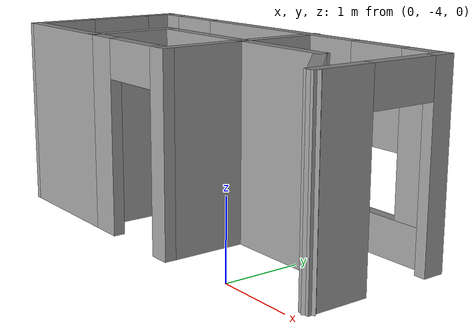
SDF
<?xml version='1.0'?>
<sdf version='1.6'>
  <model name='test_room'>
    <pose frame=''>-1.54985 -3.00256 0 0 -0 0</pose>
    <link name='Wall_0'>
      <pose frame=''>-0.015152 1.07256 0 0 -0 0</pose>
      <visual name='Wall_0_Visual_0'>
        <pose frame=''>-2.5225 0 1.25 0 -0 0</pose>
        <geometry>
          <box>
            <size>0.455 0.15 2.5</size>
          </box>
        </geometry>
        <material>
          <script>
            <uri>file://media/materials/scripts/gazebo.material</uri>
            <name>Gazebo/Grey</name>
          </script>
          <ambient>1 1 1 1</ambient>
        </material>
      </visual>
      <collision name='Wall_0_Collision_0'>
        <geometry>
          <box>
            <size>0.455 0.15 2.5</size>
          </box>
        </geometry>
        <pose frame=''>-2.5225 0 1.25 0 -0 0</pose>
      </collision>
      <visual name='Wall_0_Visual_1'>
        <pose frame=''>0.2275 0 0.25 0 -0 0</pose>
        <geometry>
          <box>
            <size>5.045 0.15 0.5</size>
          </box>
        </geometry>
        <material>
          <script>
            <uri>file://media/materials/scripts/gazebo.material</uri>
            <name>Gazebo/Grey</name>
          </script>
          <ambient>1 1 1 1</ambient>
        </material>
      </visual>
      <collision name='Wall_0_Collision_1'>
        <geometry>
          <box>
            <size>5.045 0.15 0.5</size>
          </box>
        </geometry>
        <pose frame=''>0.2275 0 0.25 0 -0 0</pose>
      </collision>
      <visual name='Wall_0_Visual_2'>
        <pose frame=''>-0.078 0 1.5 0 -0 0</pose>
        <geometry>
          <box>
            <size>2.834 0.15 2</size>
          </box>
        </geometry>
        <material>
          <script>
            <uri>file://media/materials/scripts/gazebo.material</uri>
            <name>Gazebo/Grey</name>
          </script>
          <ambient>1 1 1 1</ambient>
        </material>
      </visual>
      <collision name='Wall_0_Collision_2'>
        <geometry>
          <box>
            <size>2.834 0.15 2</size>
          </box>
        </geometry>
        <pose frame=''>-0.078 0 1.5 0 -0 0</pose>
      </collision>
      <visual name='Wall_0_Visual_3'>
        <pose frame=''>2.4445 0 1.5 0 -0 0</pose>
        <geometry>
          <box>
            <size>0.611 0.15 2</size>
          </box>
        </geometry>
        <material>
          <script>
            <uri>file://media/materials/scripts/gazebo.material</uri>
            <name>Gazebo/Grey</name>
          </script>
          <ambient>1 1 1 1</ambient>
        </material>
      </visual>
      <collision name='Wall_0_Collision_3'>
        <geometry>
          <box>
            <size>0.611 0.15 2</size>
          </box>
        </geometry>
        <pose frame=''>2.4445 0 1.5 0 -0 0</pose>
      </collision>
      <visual name='Wall_0_Visual_4'>
        <pose frame=''>-1.895 0 1.9 0 -0 0</pose>
        <geometry>
          <box>
            <size>0.8 0.15 1.2</size>
          </box>
        </geometry>
        <material>
          <script>
            <uri>file://media/materials/scripts/gazebo.material</uri>
            <name>Gazebo/Grey</name>
          </script>
          <ambient>1 1 1 1</ambient>
        </material>
      </visual>
      <collision name='Wall_0_Collision_4'>
        <geometry>
          <box>
            <size>0.8 0.15 1.2</size>
          </box>
        </geometry>
        <pose frame=''>-1.895 0 1.9 0 -0 0</pose>
      </collision>
      <visual name='Wall_0_Visual_5'>
        <pose frame=''>1.739 0 1.9 0 -0 0</pose>
        <geometry>
          <box>
            <size>0.8 0.15 1.2</size>
          </box>
        </geometry>
        <material>
          <script>
            <uri>file://media/materials/scripts/gazebo.material</uri>
            <name>Gazebo/Grey</name>
          </script>
          <ambient>1 1 1 1</ambient>
        </material>
      </visual>
      <collision name='Wall_0_Collision_5'>
        <geometry>
          <box>
            <size>0.8 0.15 1.2</size>
          </box>
        </geometry>
        <pose frame=''>1.739 0 1.9 0 -0 0</pose>
      </collision>
    </link>
    <link name='Wall_1'>
      <pose frame=''>2.65985 0.147564 0 0 0 -1.5708</pose>
      <visual name='Wall_1_Visual_0'>
        <pose frame=''>-0.857 0 1.25 0 -0 0</pose>
        <geometry>
          <box>
            <size>0.286 0.15 2.5</size>
          </box>
        </geometry>
        <material>
          <script>
            <uri>file://media/materials/scripts/gazebo.material</uri>
            <name>Gazebo/Grey</name>
          </script>
          <ambient>1 1 1 1</ambient>
        </material>
      </visual>
      <collision name='Wall_1_Collision_0'>
        <geometry>
          <box>
            <size>0.286 0.15 2.5</size>
          </box>
        </geometry>
        <pose frame=''>-0.857 0 1.25 0 -0 0</pose>
      </collision>
      <visual name='Wall_1_Visual_1'>
        <pose frame=''>0.593 0 1.25 0 -0 0</pose>
        <geometry>
          <box>
            <size>0.814 0.15 2.5</size>
          </box>
        </geometry>
        <material>
          <script>
            <uri>file://media/materials/scripts/gazebo.material</uri>
            <name>Gazebo/Grey</name>
          </script>
          <ambient>1 1 1 1</ambient>
        </material>
      </visual>
      <collision name='Wall_1_Collision_1'>
        <geometry>
          <box>
            <size>0.814 0.15 2.5</size>
          </box>
        </geometry>
        <pose frame=''>0.593 0 1.25 0 -0 0</pose>
      </collision>
      <visual name='Wall_1_Visual_2'>
        <pose frame=''>-0.264 0 2.25 0 -0 0</pose>
        <geometry>
          <box>
            <size>0.9 0.15 0.5</size>
          </box>
        </geometry>
        <material>
          <script>
            <uri>file://media/materials/scripts/gazebo.material</uri>
            <name>Gazebo/Grey</name>
          </script>
          <ambient>1 1 1 1</ambient>
        </material>
      </visual>
      <collision name='Wall_1_Collision_2'>
        <geometry>
          <box>
            <size>0.9 0.15 0.5</size>
          </box>
        </geometry>
        <pose frame=''>-0.264 0 2.25 0 -0 0</pose>
      </collision>
    </link>
    <link name='Wall_10'>
      <collision name='Wall_10_Collision'>
        <geometry>
          <box>
            <size>1.75 0.15 2.5</size>
          </box>
        </geometry>
        <pose frame=''>0 0 1.25 0 -0 0</pose>
      </collision>
      <visual name='Wall_10_Visual'>
        <pose frame=''>0 0 1.25 0 -0 0</pose>
        <geometry>
          <box>
            <size>1.75 0.15 2.5</size>
          </box>
        </geometry>
        <material>
          <script>
            <uri>file://media/materials/scripts/gazebo.material</uri>
            <name>Gazebo/Grey</name>
          </script>
          <ambient>1 1 1 1</ambient>
        </material>
      </visual>
      <pose frame=''>-1.86797 -1.09962 0 0 -0 3.14159</pose>
    </link>
    <link name='Wall_11'>
      <pose frame=''>-2.67906 -0.013528 0 0 -0 1.58101</pose>
      <visual name='Wall_11_Visual_0'>
        <pose frame=''>-0.696819 0 1.25 0 -0 0</pose>
        <geometry>
          <box>
            <size>0.928657 0.15 2.5</size>
          </box>
        </geometry>
        <material>
          <script>
            <uri>file://media/materials/scripts/gazebo.material</uri>
            <name>Gazebo/Grey</name>
          </script>
          <ambient>1 1 1 1</ambient>
        </material>
      </visual>
      <collision name='Wall_11_Collision_0'>
        <geometry>
          <box>
            <size>0.928657 0.15 2.5</size>
          </box>
        </geometry>
        <pose frame=''>-0.696819 0 1.25 0 -0 0</pose>
      </collision>
      <visual name='Wall_11_Visual_1'>
        <pose frame=''>0.914329 0 1.25 0 -0 0</pose>
        <geometry>
          <box>
            <size>0.493639 0.15 2.5</size>
          </box>
        </geometry>
        <material>
          <script>
            <uri>file://media/materials/scripts/gazebo.material</uri>
            <name>Gazebo/Grey</name>
          </script>
          <ambient>1 1 1 1</ambient>
        </material>
      </visual>
      <collision name='Wall_11_Collision_1'>
        <geometry>
          <box>
            <size>0.493639 0.15 2.5</size>
          </box>
        </geometry>
        <pose frame=''>0.914329 0 1.25 0 -0 0</pose>
      </collision>
      <visual name='Wall_11_Visual_2'>
        <pose frame=''>0.217509 0 2.25 0 -0 0</pose>
        <geometry>
          <box>
            <size>0.9 0.15 0.5</size>
          </box>
        </geometry>
        <material>
          <script>
            <uri>file://media/materials/scripts/gazebo.material</uri>
            <name>Gazebo/Grey</name>
          </script>
          <ambient>1 1 1 1</ambient>
        </material>
      </visual>
      <collision name='Wall_11_Collision_2'>
        <geometry>
          <box>
            <size>0.9 0.15 0.5</size>
          </box>
        </geometry>
        <pose frame=''>0.217509 0 2.25 0 -0 0</pose>
      </collision>
    </link>
    <link name='Wall_2'>
      <collision name='Wall_2_Collision'>
        <geometry>
          <box>
            <size>1.25 0.15 2.5</size>
          </box>
        </geometry>
        <pose frame=''>0 0 1.25 0 -0 0</pose>
      </collision>
      <visual name='Wall_2_Visual'>
        <pose frame=''>0 0 1.25 0 -0 0</pose>
        <geometry>
          <box>
            <size>1.25 0.15 2.5</size>
          </box>
        </geometry>
        <material>
          <script>
            <uri>file://media/materials/scripts/gazebo.material</uri>
            <name>Gazebo/Grey</name>
          </script>
          <ambient>1 1 1 1</ambient>
        </material>
      </visual>
      <pose frame=''>2.27094 -0.388528 0 0 -0 2.35619</pose>
    </link>
    <link name='Wall_3'>
      <collision name='Wall_3_Collision'>
        <geometry>
          <box>
            <size>1.5 0.15 2.5</size>
          </box>
        </geometry>
        <pose frame=''>0 0 1.25 0 -0 0</pose>
      </collision>
      <visual name='Wall_3_Visual'>
        <pose frame=''>0 0 1.25 0 -0 0</pose>
        <geometry>
          <box>
            <size>1.5 0.15 2.5</size>
          </box>
        </geometry>
        <material>
          <script>
            <uri>file://media/materials/scripts/gazebo.material</uri>
            <name>Gazebo/Grey</name>
          </script>
          <ambient>1 1 1 1</ambient>
        </material>
      </visual>
      <pose frame=''>1.20703 0.000381 0 0 -0 3.14159</pose>
    </link>
    <link name='Wall_4'>
      <collision name='Wall_4_Collision'>
        <geometry>
          <box>
            <size>1.25 0.15 2.5</size>
          </box>
        </geometry>
        <pose frame=''>0 0 1.25 0 -0 0</pose>
      </collision>
      <visual name='Wall_4_Visual'>
        <pose frame=''>0 0 1.25 0 -0 0</pose>
        <geometry>
          <box>
            <size>1.25 0.15 2.5</size>
          </box>
        </geometry>
        <material>
          <script>
            <uri>file://media/materials/scripts/gazebo.material</uri>
            <name>Gazebo/Grey</name>
          </script>
          <ambient>1 1 1 1</ambient>
        </material>
      </visual>
      <pose frame=''>0.53203 -0.549619 0 0 0 -1.5708</pose>
    </link>
    <link name='Wall_5'>
      <pose frame=''>-0.26797 -1.09962 0 0 -0 3.14159</pose>
      <visual name='Wall_5_Visual_0'>
        <pose frame=''>-0.738409 0 1.25 0 -0 0</pose>
        <geometry>
          <box>
            <size>0.273183 0.15 2.5</size>
          </box>
        </geometry>
        <material>
          <script>
            <uri>file://media/materials/scripts/gazebo.material</uri>
            <name>Gazebo/Grey</name>
          </script>
          <ambient>1 1 1 1</ambient>
        </material>
      </visual>
      <collision name='Wall_5_Collision_0'>
        <geometry>
          <box>
            <size>0.273183 0.15 2.5</size>
          </box>
        </geometry>
        <pose frame=''>-0.738409 0 1.25 0 -0 0</pose>
      </collision>
      <visual name='Wall_5_Visual_1'>
        <pose frame=''>0.586591 0 1.25 0 -0 0</pose>
        <geometry>
          <box>
            <size>0.576817 0.15 2.5</size>
          </box>
        </geometry>
        <material>
          <script>
            <uri>file://media/materials/scripts/gazebo.material</uri>
            <name>Gazebo/Grey</name>
          </script>
          <ambient>1 1 1 1</ambient>
        </material>
      </visual>
      <collision name='Wall_5_Collision_1'>
        <geometry>
          <box>
            <size>0.576817 0.15 2.5</size>
          </box>
        </geometry>
        <pose frame=''>0.586591 0 1.25 0 -0 0</pose>
      </collision>
      <visual name='Wall_5_Visual_2'>
        <pose frame=''>-0.151817 0 2.25 0 -0 0</pose>
        <geometry>
          <box>
            <size>0.9 0.15 0.5</size>
          </box>
        </geometry>
        <material>
          <script>
            <uri>file://media/materials/scripts/gazebo.material</uri>
            <name>Gazebo/Grey</name>
          </script>
          <ambient>1 1 1 1</ambient>
        </material>
      </visual>
      <collision name='Wall_5_Collision_2'>
        <geometry>
          <box>
            <size>0.9 0.15 0.5</size>
          </box>
        </geometry>
        <pose frame=''>-0.151817 0 2.25 0 -0 0</pose>
      </collision>
    </link>
    <link name='Wall_6'>
      <collision name='Wall_6_Collision'>
        <geometry>
          <box>
            <size>1.25 0.15 2.5</size>
          </box>
        </geometry>
        <pose frame=''>0 0 1.25 0 -0 0</pose>
      </collision>
      <visual name='Wall_6_Visual'>
        <pose frame=''>0 0 1.25 0 -0 0</pose>
        <geometry>
          <box>
            <size>1.25 0.15 2.5</size>
          </box>
        </geometry>
        <material>
          <script>
            <uri>file://media/materials/scripts/gazebo.material</uri>
            <name>Gazebo/Grey</name>
          </script>
          <ambient>1 1 1 1</ambient>
        </material>
      </visual>
      <pose frame=''>-1.06797 -0.549619 0 0 -0 1.5708</pose>
    </link>
    <link name='Wall_7'>
      <collision name='Wall_7_Collision'>
        <geometry>
          <box>
            <size>1.75 0.15 2.5</size>
          </box>
        </geometry>
        <pose frame=''>0 0 1.25 0 -0 0</pose>
      </collision>
      <visual name='Wall_7_Visual'>
        <pose frame=''>0 0 1.25 0 -0 0</pose>
        <geometry>
          <box>
            <size>1.75 0.15 2.5</size>
          </box>
        </geometry>
        <material>
          <script>
            <uri>file://media/materials/scripts/gazebo.material</uri>
            <name>Gazebo/Grey</name>
          </script>
          <ambient>1 1 1 1</ambient>
        </material>
      </visual>
      <pose frame=''>-0.26797 0.000381 0 0 -0 0</pose>
    </link>
    <link name='Wall_8'>
      <collision name='Wall_8_Collision'>
        <geometry>
          <box>
            <size>1.25 0.15 2.5</size>
          </box>
        </geometry>
        <pose frame=''>0 0 1.25 0 -0 0</pose>
      </collision>
      <visual name='Wall_8_Visual'>
        <pose frame=''>0 0 1.25 0 -0 0</pose>
        <geometry>
          <box>
            <size>1.25 0.15 2.5</size>
          </box>
        </geometry>
        <material>
          <script>
            <uri>file://media/materials/scripts/gazebo.material</uri>
            <name>Gazebo/Grey</name>
          </script>
          <ambient>1 1 1 1</ambient>
        </material>
      </visual>
      <pose frame=''>0.53203 0.550381 0 0 -0 1.5708</pose>
    </link>
    <static>1</static>
  </model>
</sdf>
